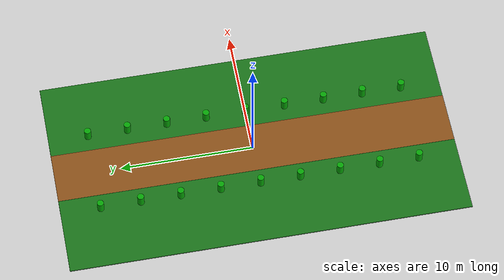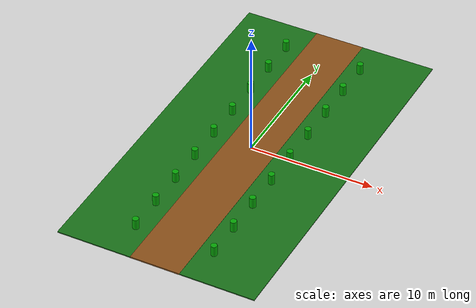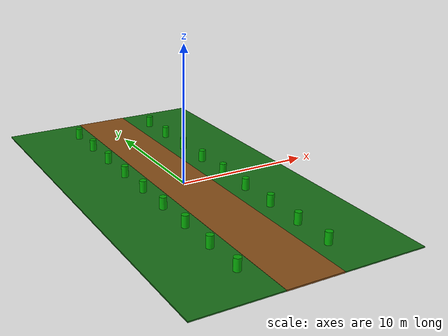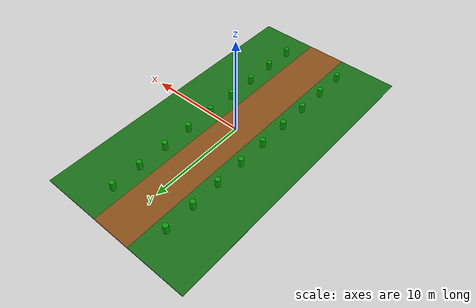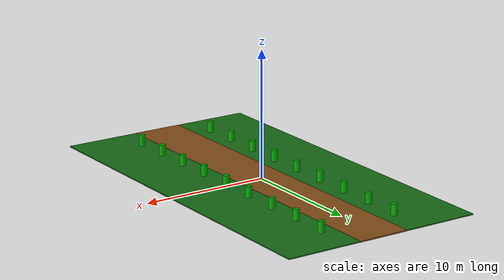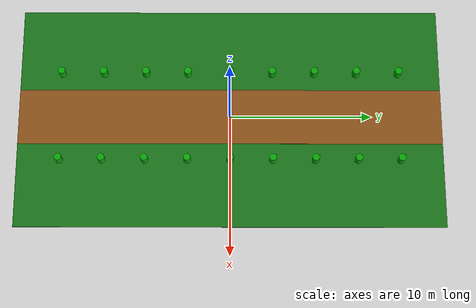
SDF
<?xml version="1.0" ?>
<sdf version="1.8">

  <world name="soil_road">

    <!-- FIZIK                                             -->

    <physics name="1ms" type="ignored">
      <max_step_size>0.001</max_step_size>
      <real_time_factor>1.0</real_time_factor>
    </physics>

    <!-- GAZEBO SISTEMLERI                                 -->

    <plugin
      filename="ignition-gazebo-physics-system"
      name="ignition::gazebo::systems::Physics">
    </plugin>

    <plugin
      filename="ignition-gazebo-user-commands-system"
      name="ignition::gazebo::systems::UserCommands">
    </plugin>

    <plugin
      filename="ignition-gazebo-scene-broadcaster-system"
      name="ignition::gazebo::systems::SceneBroadcaster">
    </plugin>

    <!-- Kamera, LiDAR ve diger sensorlerin calismasi icin -->
    <plugin
      name="ignition::gazebo::systems::Sensors"
      filename="libignition-gazebo-sensors-system.so">
      <render_engine>ogre2</render_engine>
    </plugin>

    <!-- GUNES                                             -->

    <light type="directional" name="sun">

      <cast_shadows>true</cast_shadows>

      <pose>0 0 10 0 0 0</pose>

      <diffuse>0.8 0.8 0.8 1</diffuse>

      <specular>0.2 0.2 0.2 1</specular>

      <direction>-0.5 0.1 -0.9</direction>

    </light>

    <!-- TOPRAK YOL                                        -->

    <model name="soil_road">

      <static>true</static>

      <link name="link">

        <collision name="collision">

          <geometry>

            <box>
              <size>4 30 0.1</size>
            </box>

          </geometry>

        </collision>

        <visual name="visual">

          <geometry>

            <box>
              <size>4 30 0.1</size>
            </box>

          </geometry>

          <!-- Kahverengi toprak -->

          <material>

            <ambient>0.45 0.25 0.08 1</ambient>

            <diffuse>0.55 0.32 0.10 1</diffuse>

          </material>

        </visual>

      </link>

    </model>

    <!-- SOL YESIL ALAN                                    -->

    <model name="left_field">

      <static>true</static>

      <pose>-5 0 0 0 0 0</pose>

      <link name="link">

        <collision name="collision">

          <geometry>

            <box>
              <size>6 30 0.08</size>
            </box>

          </geometry>

        </collision>

        <visual name="visual">

          <geometry>

            <box>
              <size>6 30 0.08</size>
            </box>

          </geometry>

          <material>

            <ambient>0.08 0.30 0.08 1</ambient>

            <diffuse>0.10 0.45 0.10 1</diffuse>

          </material>

        </visual>

      </link>

    </model>

    <!-- SAG YESIL ALAN                                    -->

    <model name="right_field">

      <static>true</static>

      <pose>5 0 0 0 0 0</pose>

      <link name="link">

        <collision name="collision">

          <geometry>

            <box>
              <size>6 30 0.08</size>
            </box>

          </geometry>

        </collision>

        <visual name="visual">

          <geometry>

            <box>
              <size>6 30 0.08</size>
            </box>

          </geometry>

          <material>

            <ambient>0.08 0.30 0.08 1</ambient>

            <diffuse>0.10 0.45 0.10 1</diffuse>

          </material>

        </visual>

      </link>

    </model>

    <!-- SOL BITKI SIRASI                                  -->

    <model name="left_plants">

      <static>true</static>

      <link name="link">

        <visual name="plant_1">

          <pose>-3.2 -12 0.45 0 0 0</pose>

          <geometry>
            <cylinder>
              <radius>0.25</radius>
              <length>0.9</length>
            </cylinder>
          </geometry>

          <material>
            <ambient>0.02 0.45 0.02 1</ambient>
            <diffuse>0.02 0.65 0.02 1</diffuse>
          </material>

        </visual>

        <visual name="plant_2">

          <pose>-3.2 -9 0.45 0 0 0</pose>

          <geometry>
            <cylinder>
              <radius>0.25</radius>
              <length>0.9</length>
            </cylinder>
          </geometry>

          <material>
            <ambient>0.02 0.45 0.02 1</ambient>
            <diffuse>0.02 0.65 0.02 1</diffuse>
          </material>

        </visual>

        <visual name="plant_3">

          <pose>-3.2 -6 0.45 0 0 0</pose>

          <geometry>
            <cylinder>
              <radius>0.25</radius>
              <length>0.9</length>
            </cylinder>
          </geometry>

          <material>
            <ambient>0.02 0.45 0.02 1</ambient>
            <diffuse>0.02 0.65 0.02 1</diffuse>
          </material>

        </visual>

        <visual name="plant_4">

          <pose>-3.2 -3 0.45 0 0 0</pose>

          <geometry>
            <cylinder>
              <radius>0.25</radius>
              <length>0.9</length>
            </cylinder>
          </geometry>

          <material>
            <ambient>0.02 0.45 0.02 1</ambient>
            <diffuse>0.02 0.65 0.02 1</diffuse>
          </material>

        </visual>

        <visual name="plant_5">

          <pose>-3.2 0 0.45 0 0 0</pose>

          <geometry>
            <cylinder>
              <radius>0.25</radius>
              <length>0.9</length>
            </cylinder>
          </geometry>

          <material>
            <ambient>0.02 0.45 0.02 1</ambient>
            <diffuse>0.02 0.65 0.02 1</diffuse>
          </material>

        </visual>

        <visual name="plant_6">

          <pose>-3.2 3 0.45 0 0 0</pose>

          <geometry>
            <cylinder>
              <radius>0.25</radius>
              <length>0.9</length>
            </cylinder>
          </geometry>

          <material>
            <ambient>0.02 0.45 0.02 1</ambient>
            <diffuse>0.02 0.65 0.02 1</diffuse>
          </material>

        </visual>

        <visual name="plant_7">

          <pose>-3.2 6 0.45 0 0 0</pose>

          <geometry>
            <cylinder>
              <radius>0.25</radius>
              <length>0.9</length>
            </cylinder>
          </geometry>

          <material>
            <ambient>0.02 0.45 0.02 1</ambient>
            <diffuse>0.02 0.65 0.02 1</diffuse>
          </material>

        </visual>

        <visual name="plant_8">

          <pose>-3.2 9 0.45 0 0 0</pose>

          <geometry>
            <cylinder>
              <radius>0.25</radius>
              <length>0.9</length>
            </cylinder>
          </geometry>

          <material>
            <ambient>0.02 0.45 0.02 1</ambient>
            <diffuse>0.02 0.65 0.02 1</diffuse>
          </material>

        </visual>

        <visual name="plant_9">

          <pose>-3.2 12 0.45 0 0 0</pose>

          <geometry>
            <cylinder>
              <radius>0.25</radius>
              <length>0.9</length>
            </cylinder>
          </geometry>

          <material>
            <ambient>0.02 0.45 0.02 1</ambient>
            <diffuse>0.02 0.65 0.02 1</diffuse>
          </material>

        </visual>

      </link>

    </model>

    <!-- SAG BITKI SIRASI                                  -->

    <model name="right_plants">

      <static>true</static>

      <link name="link">

        <visual name="plant_1">

          <pose>3.2 -12 0.45 0 0 0</pose>

          <geometry>
            <cylinder>
              <radius>0.25</radius>
              <length>0.9</length>
            </cylinder>
          </geometry>

          <material>
            <ambient>0.02 0.45 0.02 1</ambient>
            <diffuse>0.02 0.65 0.02 1</diffuse>
          </material>

        </visual>

        <visual name="plant_2">

          <pose>3.2 -9 0.45 0 0 0</pose>

          <geometry>
            <cylinder>
              <radius>0.25</radius>
              <length>0.9</length>
            </cylinder>
          </geometry>

          <material>
            <ambient>0.02 0.45 0.02 1</ambient>
            <diffuse>0.02 0.65 0.02 1</diffuse>
          </material>

        </visual>

        <visual name="plant_3">

          <pose>3.2 -6 0.45 0 0 0</pose>

          <geometry>
            <cylinder>
              <radius>0.25</radius>
              <length>0.9</length>
            </cylinder>
          </geometry>

          <material>
            <ambient>0.02 0.45 0.02 1</ambient>
            <diffuse>0.02 0.65 0.02 1</diffuse>
          </material>

        </visual>

        <visual name="plant_4">

          <pose>3.2 -3 0.45 0 0 0</pose>

          <geometry>
            <cylinder>
              <radius>0.25</radius>
              <length>0.9</length>
            </cylinder>
          </geometry>

          <material>
            <ambient>0.02 0.45 0.02 1</ambient>
            <diffuse>0.02 0.65 0.02 1</diffuse>
          </material>

        </visual>

        <visual name="plant_5">

          <pose>3.2 0 0.45 0 0 0</pose>

          <geometry>
            <cylinder>
              <radius>0.25</radius>
              <length>0.9</length>
            </cylinder>
          </geometry>

          <material>
            <ambient>0.02 0.45 0.02 1</ambient>
            <diffuse>0.02 0.65 0.02 1</diffuse>
          </material>

        </visual>

        <visual name="plant_6">

          <pose>3.2 3 0.45 0 0 0</pose>

          <geometry>
            <cylinder>
              <radius>0.25</radius>
              <length>0.9</length>
            </cylinder>
          </geometry>

          <material>
            <ambient>0.02 0.45 0.02 1</ambient>
            <diffuse>0.02 0.65 0.02 1</diffuse>
          </material>

        </visual>

        <visual name="plant_7">

          <pose>3.2 6 0.45 0 0 0</pose>

          <geometry>
            <cylinder>
              <radius>0.25</radius>
              <length>0.9</length>
            </cylinder>
          </geometry>

          <material>
            <ambient>0.02 0.45 0.02 1</ambient>
            <diffuse>0.02 0.65 0.02 1</diffuse>
          </material>

        </visual>

        <visual name="plant_8">

          <pose>3.2 9 0.45 0 0 0</pose>

          <geometry>
            <cylinder>
              <radius>0.25</radius>
              <length>0.9</length>
            </cylinder>
          </geometry>

          <material>
            <ambient>0.02 0.45 0.02 1</ambient>
            <diffuse>0.02 0.65 0.02 1</diffuse>
          </material>

        </visual>

        <visual name="plant_9">

          <pose>3.2 12 0.45 0 0 0</pose>

          <geometry>
            <cylinder>
              <radius>0.25</radius>
              <length>0.9</length>
            </cylinder>
          </geometry>

          <material>
            <ambient>0.02 0.45 0.02 1</ambient>
            <diffuse>0.02 0.65 0.02 1</diffuse>
          </material>

        </visual>

      </link>

    </model>

  </world>

</sdf>
